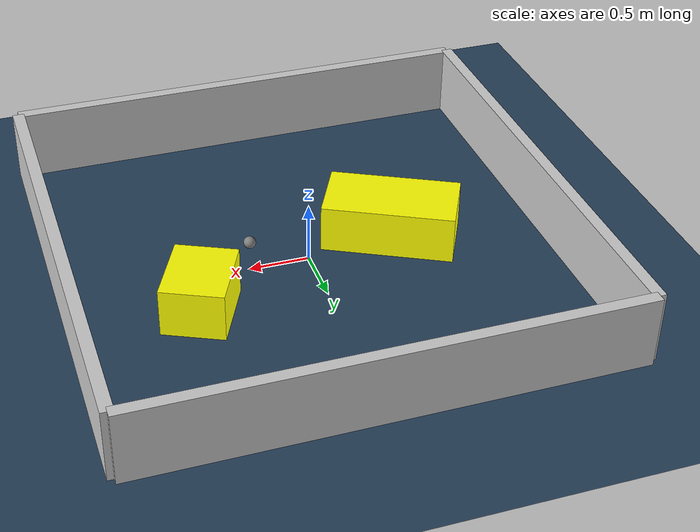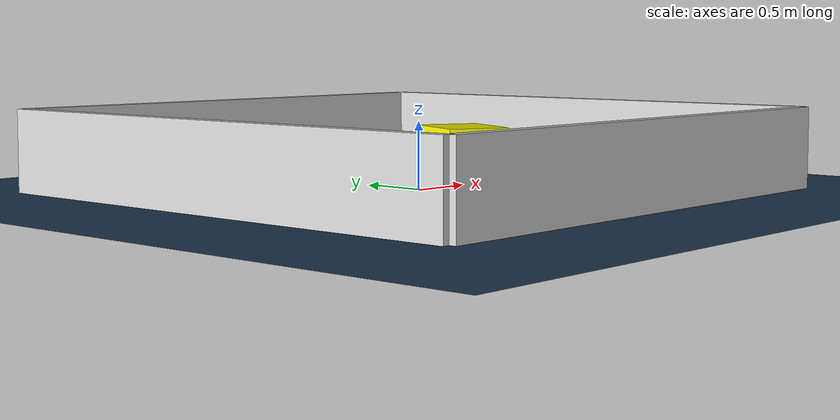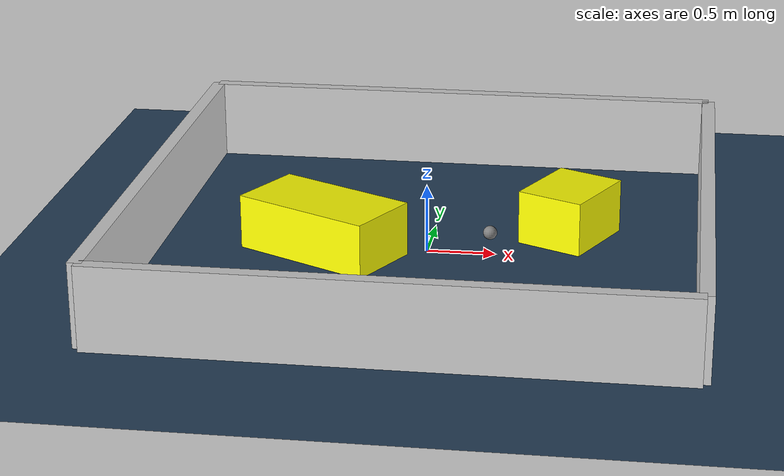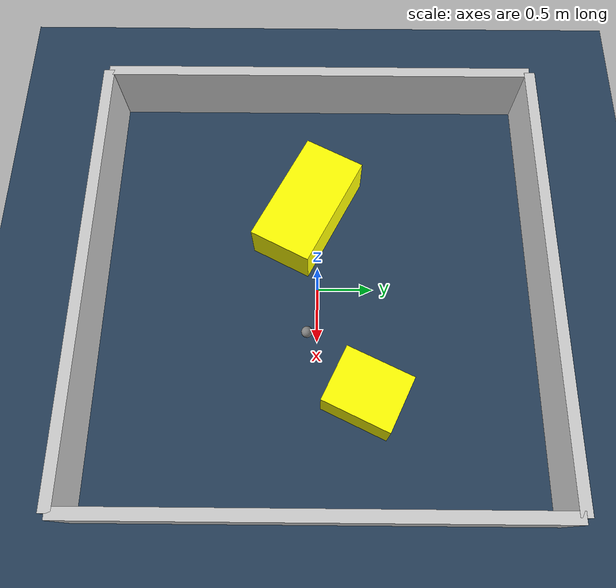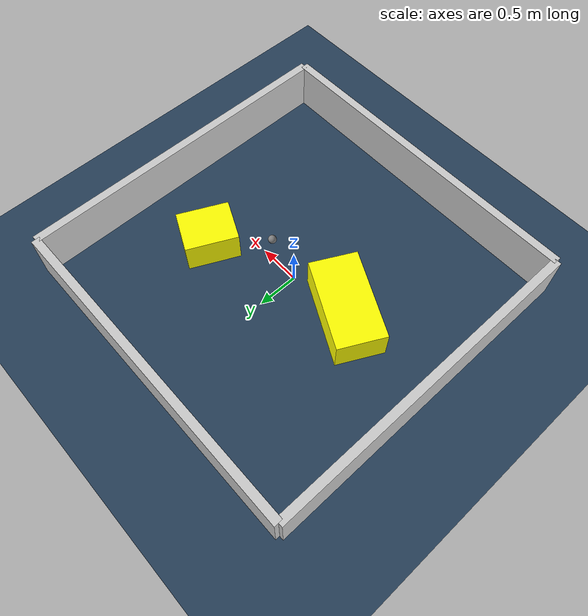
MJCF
<?xml version="1.0" ?>
<mujoco model="generated_environment">
  <option timestep="0.01" integrator="RK4" cone="elliptic"/>
  <default>
    <geom density="1"/>
  </default>
  <asset>
    <texture builtin="gradient" height="3072" rgb1="0.3 0.5 0.7" rgb2="0 0 0" type="skybox" width="512"/>
    <texture builtin="checker" height="300" mark="edge" markrgb="0.8 0.8 0.8" name="groundplane" rgb1="0.2 0.3 0.4" rgb2="0.1 0.2 0.3" type="2d" width="300"/>
    <material name="groundplane" reflectance="0.2" texrepeat="5 5" texture="groundplane" texuniform="true"/>
    <material name="robot" rgba="0.0 1.0 0.0 1"/>
  </asset>
  <worldbody>
    <light dir="0 0 -1" directional="true" pos="0 0 1.5"/>
    <geom condim="4" friction="1.0 0.005 0.001" material="groundplane" name="floor" size="0 0 0.05" type="plane"/>
    <body name="walls">
      <geom name="wall_1" condim="4" pos="-2.0 0.0 0.3" rgba="0.800000011920929 0.800000011920929 0.800000011920929 1.0" size="0.05 2.0 0.3" type="box"/>
      <geom name="wall_2" condim="4" pos="2.0 0.0 0.3" rgba="0.800000011920929 0.800000011920929 0.800000011920929 1.0" size="0.05 2.0 0.3" type="box"/>
      <geom name="wall_3" condim="4" pos="0.0 -2.0 0.3" rgba="0.800000011920929 0.800000011920929 0.800000011920929 1.0" size="2.0 0.05 0.3" type="box"/>
      <geom name="wall_4" condim="4" pos="0.0 2.0 0.3" rgba="0.800000011920929 0.800000011920929 0.800000011920929 1.0" size="2.0 0.05 0.3" type="box"/>
    </body>
    <body name="robot">
      <joint name="joint_x" type="slide" pos="0 0 0" axis="1 0 0"/>
      <joint name="joint_y" type="slide" pos="0 0 0" axis="0 1 0"/>
      <geom name="robot" type="sphere" pos="0.4680562025719084 -0.08663173662752466 0.2" size="0.05" mass="5." friction="1.0 0.005 0.0001" condim="4"/>
      <site name="sensor_ball"/>
    </body>
    <body name="obstacle_1_movable">
      <geom name="obstacle_1_movable" condim="4" pos="1.0059533056542977 0.4253016575747588 0.2" euler="0 0 244.55751937790163" friction="1.0 0.005 0.001" rgba="1 1 0 1" size="0.3116917042540014 0.25445218896729893 0.2" type="box" mass="0.1"/>
      <joint type="free"/>
    </body>
    <body name="obstacle_2_movable">
      <geom name="obstacle_2_movable" condim="4" pos="-0.7457201139792581 -0.09495382574142952 0.2" euler="0 0 62.72346962220293" friction="1.0 0.005 0.001" rgba="1 1 0 1" size="0.2868846150546687 0.5412754271413078 0.2" type="box" mass="0.1"/>
      <joint type="free"/>
    </body>
  </worldbody>
  <actuator>
    <motor name="actuator_x" joint="joint_x" gear="1" ctrlrange="-1 1"/>
    <motor name="actuator_y" joint="joint_y" gear="1" ctrlrange="-1 1"/>
  </actuator>
</mujoco>
